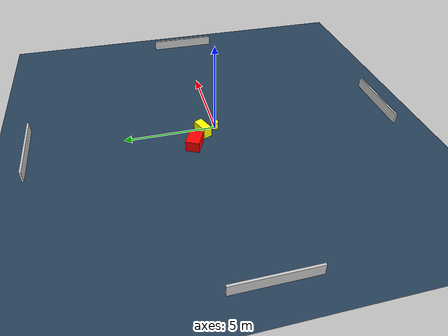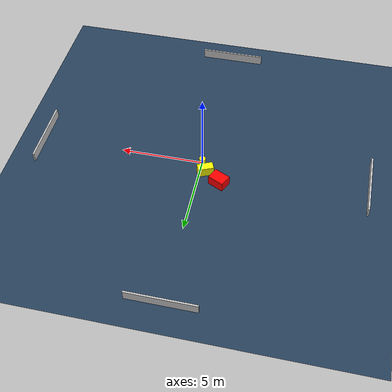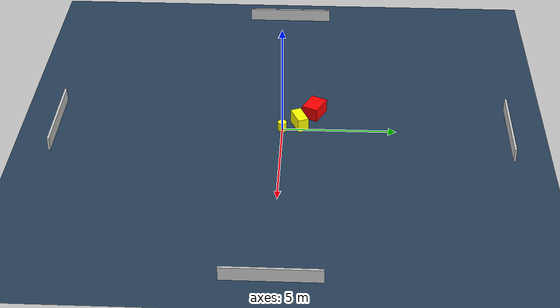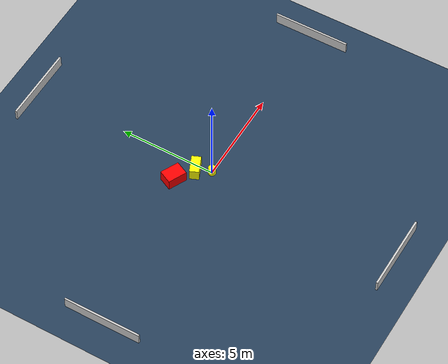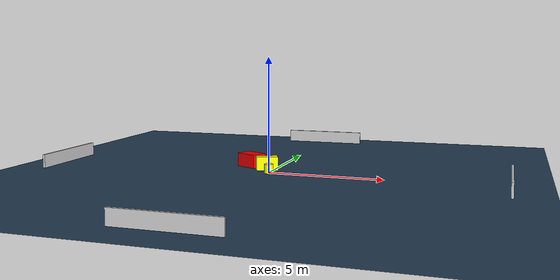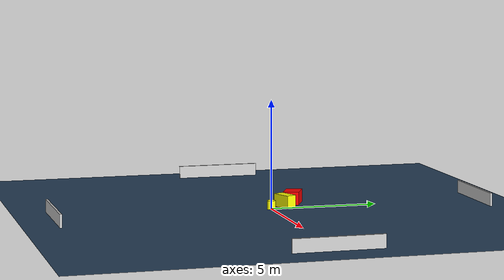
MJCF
<?xml version="1.0" ?>
<mujoco model="generated_environment">
  <option timestep="0.01" integrator="RK4" cone="elliptic"/>
  <default>
    <geom density="1"/>
  </default>
  <asset>
    <texture builtin="gradient" height="3072" name="skybox" rgb1="0.3 0.5 0.7" rgb2="0 0 0" type="skybox" width="512"/>
    <texture builtin="checker" height="300" name="groundplane" rgb1="0.2 0.3 0.4" rgb2="0.1 0.2 0.3" type="2d" width="300"/>
    <material name="groundplane" reflectance="0.2" texrepeat="5 5" texture="groundplane"/>
  </asset>
  <worldbody>
    <light dir="0 0 -1" directional="true" pos="0 0 1.5"/>
    <geom condim="3" friction="0.5 0.005 0.001" material="groundplane" name="floor" pos="0 0 0" size="0 0 0.05" type="plane"/>
    <body name="walls">
      <geom name="wall_1" condim="4" pos="-10.0 0.0 0.3" rgba="0.800000011920929 0.800000011920929 0.800000011920929 1.0" size="0.05 2.0 0.3" type="box"/>
      <geom name="wall_2" condim="4" pos="10.0 0.0 0.3" rgba="0.800000011920929 0.800000011920929 0.800000011920929 1.0" size="0.05 2.0 0.3" type="box"/>
      <geom name="wall_3" condim="4" pos="0.0 -10.0 0.3" rgba="0.800000011920929 0.800000011920929 0.800000011920929 1.0" size="2.0 0.05 0.3" type="box"/>
      <geom name="wall_4" condim="4" pos="0.0 10.0 0.3" rgba="0.800000011920929 0.800000011920929 0.800000011920929 1.0" size="2.0 0.05 0.3" type="box"/>
    </body>
    <body name="robot">
      <joint name="joint_x" type="slide" pos="0 0 0" axis="1 0 0"/>
      <joint name="joint_y" type="slide" pos="0 0 0" axis="0 1 0"/>
      <geom name="robot" type="cylinder" pos="0.0 0.0 0.2" size="0.2 0.2 0.0" mass="5.0" friction="1.0 0.005 0.0001" condim="4" rgba="1.0 1.0 0.0 1.0"/>
    </body>
    <body name="obstacle_1_movable">
      <geom name="obstacle_1_movable" condim="4" pos="-0.3362045340557385 0.7468094872190525 0.3" euler="0 0 23.342135315299206" friction="0.0 0.005 0.001" rgba="1.0 1.0 0.0 1.0" size="0.4732588027033945 0.24100608447872107 0.3" type="box" mass="0.1"/>
      <joint type="free"/>
    </body>
    <body name="obstacle_2_static">
      <geom name="obstacle_2_static" condim="4" pos="-1.2926591456702012 1.3972743242263246 0.3" euler="0 0 334.17152533705945" friction="0.0 0.005 0.001" rgba="1.0 0.0 0.0 1.0" size="0.5029521235065 0.36639702563207877 0.3" type="box"/>
    </body>
  </worldbody>
  <actuator>
    <motor name="actuator_x" joint="joint_x" gear="1" ctrlrange="-1 1"/>
    <motor name="actuator_y" joint="joint_y" gear="1" ctrlrange="-1 1"/>
  </actuator>
</mujoco>
